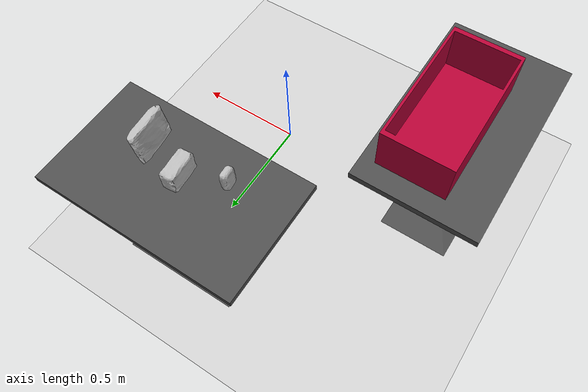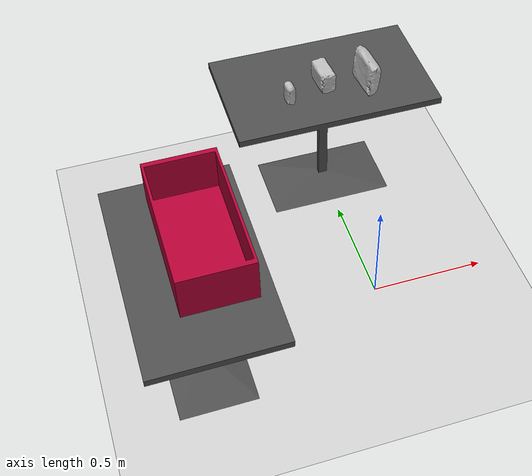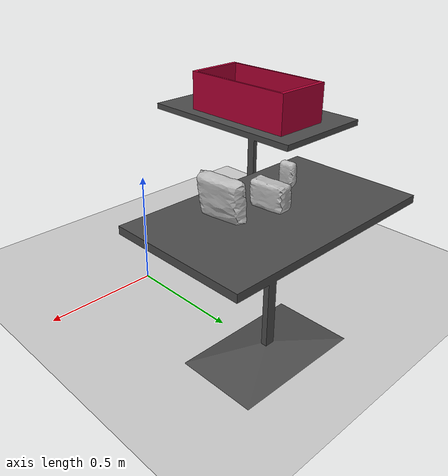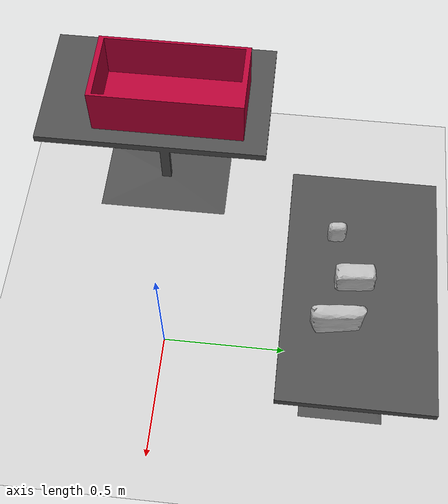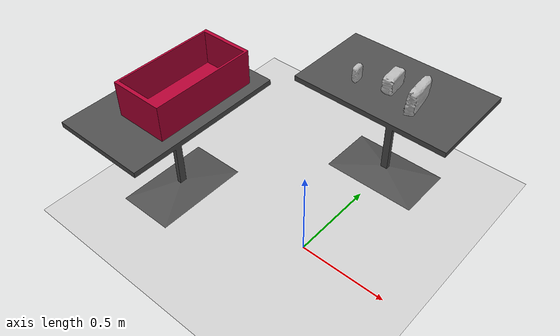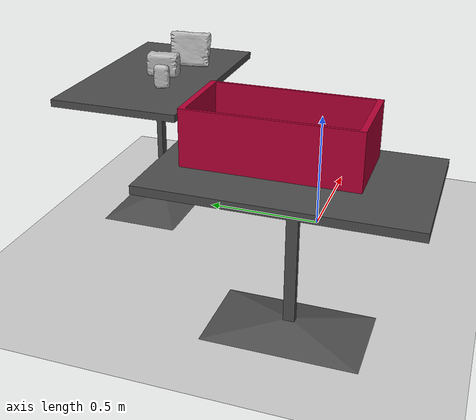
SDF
<sdf version="1.6">
 <world name="pick_place_world">
  <gravity>0 0 -9.81</gravity>
  <magnetic_field>6e-06 2.3e-05 -4.2e-05</magnetic_field>
  <atmosphere type="adiabatic"/>
  <physics name="default_physics" default="0" type="ode">
   <max_step_size>0.001</max_step_size>
   <real_time_factor>1</real_time_factor>
   <real_time_update_rate>1000</real_time_update_rate>
  </physics>
  <scene><ambient>0.4 0.4 0.4 1</ambient><background>0.7 0.7 0.7 1</background><shadows>1</shadows></scene>
  <spherical_coordinates>
   <surface_model>EARTH_WGS84</surface_model>
   <latitude_deg>0</latitude_deg>
   <longitude_deg>0</longitude_deg>
   <elevation>0</elevation>
   <heading_deg>0</heading_deg>
  </spherical_coordinates>
  <include><uri>model://sun</uri></include>
  <include><uri>model://ground_plane</uri></include>
  <model name="table_front">
   <pose>-0.004783 0.739666 0 0 -0 1.57</pose>
   <link name="link_0">
    <inertial>
     <mass>1</mass>
     <inertia>
      <ixx>0.166667</ixx>
      <ixy>0</ixy>
      <ixz>0</ixz>
      <iyy>0.166667</iyy>
      <iyz>0</iyz>
      <izz>0.166667</izz>
     </inertia>
    </inertial>
    <visual name="visual">
     <geometry><mesh><uri>model://short_table/meshes/short_table.dae</uri><scale>1 1 1</scale></mesh></geometry>
     <material>
      <lighting>1</lighting>
      <script><uri>file://media/materials/scripts/gazebo.material</uri><name>Gazebo/DarkGray</name></script>
     </material>
    </visual>
    <collision name="collision">
     <geometry><mesh><uri>model://short_table/meshes/short_table.dae</uri><scale>1 1 1</scale></mesh></geometry>
     <surface>
      <friction>
       <ode><mu>1</mu><mu2>1</mu2><fdir1>0 0 0</fdir1><slip1>0</slip1><slip2>0</slip2></ode>
       <torsional>
        <coefficient>1</coefficient>
        <patch_radius>0</patch_radius>
        <surface_radius>0</surface_radius>
        <use_patch_radius>1</use_patch_radius>
        <ode><slip>0</slip></ode>
       </torsional>
      </friction>
      <bounce><restitution_coefficient>0</restitution_coefficient><threshold>1e+06</threshold></bounce>
      <contact>
       <collide_without_contact>0</collide_without_contact>
       <collide_without_contact_bitmask>1</collide_without_contact_bitmask>
       <collide_bitmask>1</collide_bitmask>
       <ode>
        <soft_cfm>0</soft_cfm>
        <soft_erp>0.2</soft_erp>
        <kp>1e+13</kp>
        <kd>1</kd>
        <max_vel>0.01</max_vel>
        <min_depth>0</min_depth>
       </ode>
       <bullet>
        <split_impulse>1</split_impulse>
        <split_impulse_penetration_threshold>-0.01</split_impulse_penetration_threshold>
        <soft_cfm>0</soft_cfm>
        <soft_erp>0.2</soft_erp>
        <kp>1e+13</kp>
        <kd>1</kd>
       </bullet>
      </contact>
     </surface>
    </collision>
   </link>
   <static>1</static>
  </model>
  <model name="dropbox_table">
   <pose>-0.804408 -0.098145 0 0 0 0.000476</pose>
   <link name="link_0">
    <inertial>
     <mass>1</mass>
     <inertia>
      <ixx>0.166667</ixx>
      <ixy>0</ixy>
      <ixz>0</ixz>
      <iyy>0.166667</iyy>
      <iyz>0</iyz>
      <izz>0.166667</izz>
     </inertia>
    </inertial>
    <visual name="visual">
     <geometry><mesh><uri>model://short_table/meshes/short_table.dae</uri><scale>1 1 1</scale></mesh></geometry>
     <material>
      <lighting>1</lighting>
      <script><uri>file://media/materials/scripts/gazebo.material</uri><name>Gazebo/DarkGray</name></script>
     </material>
    </visual>
    <collision name="collision">
     <geometry><mesh><uri>model://short_table/meshes/short_table.dae</uri><scale>1 1 1</scale></mesh></geometry>
     <surface>
      <friction>
       <ode><mu>1</mu><mu2>1</mu2><fdir1>0 0 0</fdir1><slip1>0</slip1><slip2>0</slip2></ode>
       <torsional>
        <coefficient>1</coefficient>
        <patch_radius>0</patch_radius>
        <surface_radius>0</surface_radius>
        <use_patch_radius>1</use_patch_radius>
        <ode><slip>0</slip></ode>
       </torsional>
      </friction>
      <bounce><restitution_coefficient>0</restitution_coefficient><threshold>1e+06</threshold></bounce>
      <contact>
       <collide_without_contact>0</collide_without_contact>
       <collide_without_contact_bitmask>1</collide_without_contact_bitmask>
       <collide_bitmask>1</collide_bitmask>
       <ode>
        <soft_cfm>0</soft_cfm>
        <soft_erp>0.2</soft_erp>
        <kp>1e+13</kp>
        <kd>1</kd>
        <max_vel>0.01</max_vel>
        <min_depth>0</min_depth>
       </ode>
       <bullet>
        <split_impulse>1</split_impulse>
        <split_impulse_penetration_threshold>-0.01</split_impulse_penetration_threshold>
        <soft_cfm>0</soft_cfm>
        <soft_erp>0.2</soft_erp>
        <kp>1e+13</kp>
        <kd>1</kd>
       </bullet>
      </contact>
     </surface>
    </collision>
   </link>
   <static>1</static>
  </model>
  <model name="dropbox">
   <pose>-0.745301 -0.03408 0.612293 0 0 0</pose>
   <link name="link_0">
    <inertial>
     <mass>1</mass>
     <inertia>
      <ixx>0.166667</ixx>
      <ixy>0</ixy>
      <ixz>0</ixz>
      <iyy>0.166667</iyy>
      <iyz>0</iyz>
      <izz>0.166667</izz>
     </inertia>
    </inertial>
    <visual name="visual">
     <geometry><mesh><uri>model://dropbox/meshes/dropbox.dae</uri><scale>1 1 1</scale></mesh></geometry>
     <material>
      <lighting>1</lighting>
      <script><uri>file://media/materials/scripts/gazebo.material</uri><name>Gazebo/Grey</name></script>
      <ambient>0.3 0 0.1 1</ambient>
      <diffuse>0.7 0 0.2 1</diffuse>
      <specular>0.01 0 0.01 1</specular>
      <emissive>0 0 0 1</emissive>
     </material>
    </visual>
    <collision name="collision">
     <geometry><mesh><uri>model://dropbox/meshes/dropbox.dae</uri><scale>1 1 1</scale></mesh></geometry>
     <surface>
      <friction>
       <ode><mu>1</mu><mu2>1</mu2><fdir1>0 0 0</fdir1><slip1>0</slip1><slip2>0</slip2></ode>
       <torsional>
        <coefficient>1</coefficient>
        <patch_radius>0</patch_radius>
        <surface_radius>0</surface_radius>
        <use_patch_radius>1</use_patch_radius>
        <ode><slip>0</slip></ode>
       </torsional>
      </friction>
      <bounce><restitution_coefficient>0</restitution_coefficient><threshold>1e+06</threshold></bounce>
      <contact>
       <collide_without_contact>0</collide_without_contact>
       <collide_without_contact_bitmask>1</collide_without_contact_bitmask>
       <collide_bitmask>1</collide_bitmask>
       <ode>
        <soft_cfm>0</soft_cfm>
        <soft_erp>0.2</soft_erp>
        <kp>1e+13</kp>
        <kd>1</kd>
        <max_vel>0.01</max_vel>
        <min_depth>0</min_depth>
       </ode>
       <bullet>
        <split_impulse>1</split_impulse>
        <split_impulse_penetration_threshold>-0.01</split_impulse_penetration_threshold>
        <soft_cfm>0</soft_cfm>
        <soft_erp>0.2</soft_erp>
        <kp>1e+13</kp>
        <kd>1</kd>
       </bullet>
      </contact>
     </surface>
    </collision>
   </link>
   <static>1</static>
  </model>
  <model name="biscuits">
   <static>0</static>
   <pose>0.149849 0.661013 0.609999 0.000001 -0.000004 -0.56018</pose>
   <link name="biscuits_link">
    <inertial>
     <mass>0.1</mass>
     <inertia><ixx>1</ixx><ixy>0</ixy><ixz>0</ixz><iyy>1</iyy><iyz>0</iyz><izz>1</izz></inertia>
    </inertial>
    <visual name="biscuits_visual">
     <material>
      <script>
       <uri>model://biscuits/materials/scripts</uri>
       <uri>model://biscuits/materials/textures</uri>
       <name>biscuits</name>
      </script>
     </material>
     <geometry><mesh><uri>model://biscuits/meshes/biscuits.dae</uri></mesh></geometry>
    </visual>
    <collision name="biscuits_collision">
     <pose>0.015 0.01 0.075 0 -0 2.2</pose>
     <geometry><box><size>0.19 0.06 0.15</size></box></geometry>
    </collision>
   </link>
  </model>
  <model name="soap">
   <pose>-0.029732 0.721867 0.609999 0.0 0.0 -0.425145</pose>
   <link name="soap_link">
    <inertial>
     <mass>0.08</mass>
     <inertia><ixx>1</ixx><ixy>0</ixy><ixz>0</ixz><iyy>1</iyy><iyz>0</iyz><izz>1</izz></inertia>
    </inertial>
    <visual name="soap_visual">
     <material>
      <script>
       <uri>model://soap/materials/scripts</uri>
       <uri>model://soap/materials/textures</uri>
       <name>soap</name>
      </script>
     </material>
     <geometry><mesh><uri>model://soap/meshes/soap.dae</uri></mesh></geometry>
    </visual>
    <collision name="soap_collision">
     <pose>0.02 0.002 0.05 0 0 -1.05</pose>
     <geometry><box><size>0.14 0.065 0.1</size></box></geometry>
    </collision>
   </link>
  </model>
  <model name="soap2">
   <pose>-0.18673 0.636811 0.609999 0.0 0.000006 -0.508536</pose>
   <link name="soap2_link">
    <inertial>
     <mass>0.08</mass>
     <inertia><ixx>1</ixx><ixy>0</ixy><ixz>0</ixz><iyy>1</iyy><iyz>0</iyz><izz>1</izz></inertia>
    </inertial>
    <visual name="soap2_visual">
     <material>
      <script>
       <uri>model://soap2/materials/scripts</uri>
       <uri>model://soap2/materials/textures</uri>
       <name>soap2</name>
      </script>
     </material>
     <geometry><mesh><uri>model://soap2/meshes/soap2.dae</uri></mesh></geometry>
    </visual>
    <collision name="soap2_collision">
     <pose>-0.002 0.00502 0.05 0 0 -1</pose>
     <geometry><box><size>0.065 0.04 0.105</size></box></geometry>
    </collision>
   </link>
  </model>
 </world>
</sdf>
